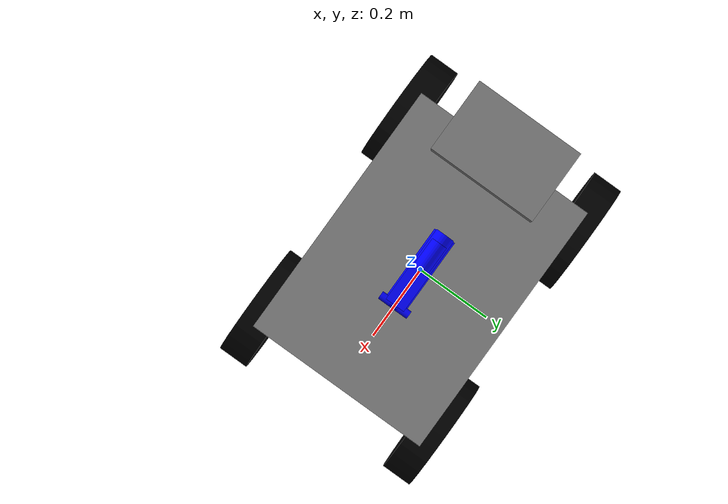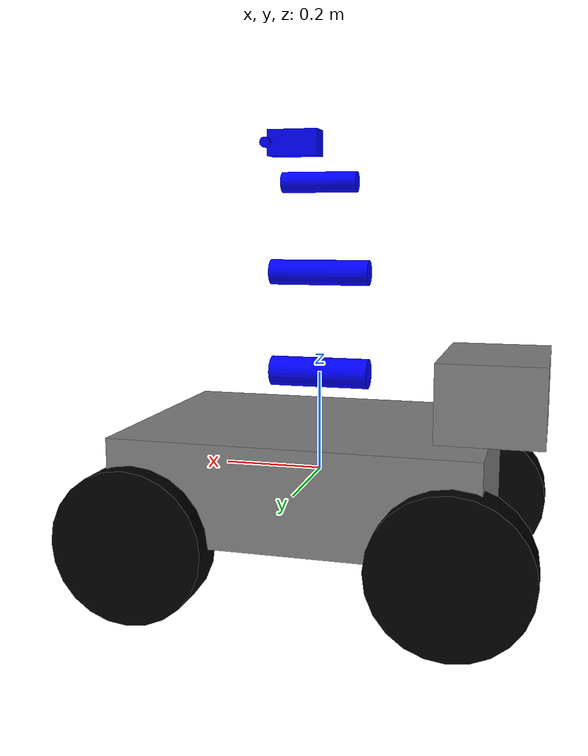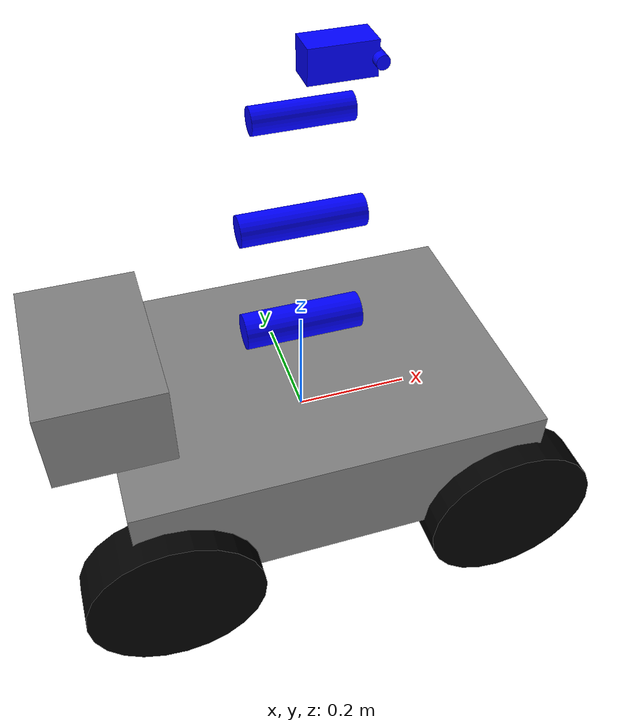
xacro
<?xml version="1.0"?>
<robot xmlns:xacro="http://ros.org/wiki/xacro" name="mobile_manipulator">

  <!-- Materials -->
  <material name="Grey"><color rgba="0.5 0.5 0.5 1"/></material>
  <material name="Black"><color rgba="0 0 0 1"/></material>
  <material name="Blue"><color rgba="0 0 1 1"/></material>

  <!-- Base Link -->
  <link name="base_link">
    <visual>
      <geometry><box size="0.7 0.5 0.2"/></geometry>
      <material name="Grey"/>
    </visual>
    <collision>
      <geometry><box size="0.7 0.5 0.2"/></geometry>
    </collision>
    <inertial>
      <mass value="6.0"/>
      <inertia ixx="0.1" ixy="0" ixz="0" iyy="0.1" iyz="0" izz="0.1"/>
    </inertial>
  </link>

  <!-- Back Electronics Box -->
  <link name="back_box">
    <visual>
      <geometry><box size="0.2 0.3 0.15"/></geometry>
      <origin xyz="-0.35 0 0.175" rpy="0 0 0"/>
      <material name="Grey"/>
    </visual>
    <collision>
      <geometry><box size="0.2 0.3 0.15"/></geometry>
      <origin xyz="-0.35 0 0.175" rpy="0 0 0"/>
    </collision>
    <inertial>
      <mass value="1.0"/>
      <inertia ixx="0.01" ixy="0" ixz="0" iyy="0.01" iyz="0" izz="0.01"/>
    </inertial>
  </link>

  <joint name="back_box_joint" type="fixed">
    <parent link="base_link"/>
    <child link="back_box"/>
    <origin xyz="0 0 0" rpy="0 0 0"/>
  </joint>

  <!-- Wheel Macro -->
  <xacro:macro name="wheel" params="name x y">
    <link name="${name}_wheel_link">
      <visual>
        <geometry><cylinder radius="0.15" length="0.08"/></geometry>
        <origin xyz="0 0 0" rpy="1.5708 0 0"/>
        <material name="Black"/>
      </visual>
      <collision>
        <geometry><cylinder radius="0.15" length="0.08"/></geometry>
        <origin xyz="0 0 0" rpy="1.5708 0 0"/>
      </collision>
      <inertial>
        <mass value="1.0"/>
        <inertia ixx="0.01" ixy="0" ixz="0" iyy="0.01" iyz="0" izz="0.01"/>
      </inertial>
    </link>
    <joint name="${name}_wheel_joint" type="continuous">
      <parent link="base_link"/>
      <child link="${name}_wheel_link"/>
      <origin xyz="${x} ${y} -0.1" rpy="0 0 0"/>
      <axis xyz="0 1 0"/>
    </joint>
  </xacro:macro>

  <!-- Instantiate Wheels -->
  <xacro:wheel name="front_left"  x="0.3" y=" 0.25"/>
  <xacro:wheel name="front_right" x="0.3" y="-0.25"/>
  <xacro:wheel name="rear_left"   x="-0.3" y=" 0.25"/>
  <xacro:wheel name="rear_right"  x="-0.3" y="-0.25"/>

  <!-- Arm Link 1 (Shoulder) -->
  <link name="arm_link_1">
    <visual>
      <geometry><cylinder length="0.2" radius="0.03"/></geometry>
      <origin xyz="0 0 0.1" rpy="0 1.5708 0"/>
      <material name="Blue"/>
    </visual>
    <collision>
      <geometry><cylinder length="0.2" radius="0.03"/></geometry>
      <origin xyz="0 0 0.1" rpy="0 1.5708 0"/>
    </collision>
    <inertial>
      <mass value="0.5"/>
      <inertia ixx="0.001" ixy="0" ixz="0" iyy="0.001" iyz="0" izz="0.001"/>
    </inertial>
  </link>
  <joint name="arm_base_joint" type="revolute">
    <parent link="base_link"/>
    <child link="arm_link_1"/>
    <origin xyz="0 0 0.1" rpy="0 0 0"/>
    <axis xyz="0 0 1"/>
    <limit lower="-1.57" upper="1.57" effort="1" velocity="1"/>
  </joint>

  <!-- Arm Link 2 (Elbow) -->
  <link name="arm_link_2">
    <visual>
      <geometry><cylinder length="0.2" radius="0.025"/></geometry>
      <origin xyz="0 0 0.1" rpy="0 1.5708 0"/>
      <material name="Blue"/>
    </visual>
    <collision>
      <geometry><cylinder length="0.2" radius="0.025"/></geometry>
      <origin xyz="0 0 0.1" rpy="0 1.5708 0"/>
    </collision>
    <inertial>
      <mass value="0.3"/>
      <inertia ixx="0.001" ixy="0" ixz="0" iyy="0.001" iyz="0" izz="0.001"/>
    </inertial>
  </link>
  <joint name="arm_elbow_joint" type="revolute">
    <parent link="arm_link_1"/>
    <child link="arm_link_2"/>
    <origin xyz="0 0 0.2" rpy="0 0 0"/>
    <axis xyz="0 1 0"/>
    <limit lower="-1.57" upper="1.57" effort="1" velocity="1"/>
  </joint>

  <!-- Arm Link 3 (Wrist) -->
  <link name="arm_link_3">
    <visual>
      <geometry><cylinder length="0.15" radius="0.02"/></geometry>
      <origin xyz="0 0 0.075" rpy="0 1.5708 0"/>
      <material name="Blue"/>
    </visual>
    <collision>
      <geometry><cylinder length="0.15" radius="0.02"/></geometry>
      <origin xyz="0 0 0.075" rpy="0 1.5708 0"/>
    </collision>
    <inertial>
      <mass value="0.2"/>
      <inertia ixx="0.0005" ixy="0" ixz="0" iyy="0.0005" iyz="0" izz="0.0005"/>
    </inertial>
  </link>
  <joint name="arm_wrist_joint" type="revolute">
    <parent link="arm_link_2"/>
    <child link="arm_link_3"/>
    <origin xyz="0 0 0.2" rpy="0 0 0"/>
    <axis xyz="0 1 0"/>
    <limit lower="-1.57" upper="1.57" effort="1" velocity="1"/>
  </joint>

  <!-- Simplified RG2 Gripper Box -->
  <link name="rg2_gripper">
    <visual>
      <geometry><box size="0.1 0.05 0.05"/></geometry>
      <origin xyz="0.05 0 0" rpy="0 0 0"/>
      <material name="Blue"/>
    </visual>
    <collision>
      <geometry><box size="0.1 0.05 0.05"/></geometry>
      <origin xyz="0.05 0 0" rpy="0 0 0"/>
    </collision>
    <inertial>
      <mass value="0.5"/>
      <inertia ixx="0.001" ixy="0" ixz="0" iyy="0.001" iyz="0" izz="0.001"/>
    </inertial>
  </link>
  <joint name="gripper_joint" type="fixed">
    <parent link="arm_link_3"/>
    <child link="rg2_gripper"/>
    <origin xyz="0 0 0.15" rpy="0 0 0"/>
  </joint>

  <!-- Gripper Fingers -->
  <link name="gripper_finger_left">
    <visual><geometry><cylinder radius="0.01" length="0.05"/></geometry>
           <origin xyz="0.1 0.015 0" rpy="1.5708 0 0"/><material name="Blue"/></visual>
  </link>
  <joint name="finger_left_joint" type="fixed">
    <parent link="rg2_gripper"/>
    <child link="gripper_finger_left"/>
    <origin xyz="0 0 0" rpy="0 0 0"/>
  </joint>

  <link name="gripper_finger_right">
    <visual><geometry><cylinder radius="0.01" length="0.05"/></geometry>
           <origin xyz="0.1 -0.015 0" rpy="1.5708 0 0"/><material name="Blue"/></visual>
  </link>
  <joint name="finger_right_joint" type="fixed">
    <parent link="rg2_gripper"/>
    <child link="gripper_finger_right"/>
    <origin xyz="0 0 0" rpy="0 0 0"/>
  </joint>

  <!-- Gazebo Diff Drive Plugin -->
  <gazebo>
    <plugin name="diff_drive_controller" filename="libgazebo_ros_diff_drive.so">
      <ros>
        <remapping>cmd_vel:=cmd_vel</remapping>
      </ros>
      <left_wheel>front_left_wheel_joint</left_wheel>
      <right_wheel>front_right_wheel_joint</right_wheel>
      <wheel_separation>0.5</wheel_separation>
      <wheel_diameter>0.3</wheel_diameter>
      <command_topic>cmd_vel</command_topic>
      <odometry_topic>odom</odometry_topic>
      <pose_covariance_diagonal>0.1 0.1 0.1 0.1 0.1 0.1</pose_covariance_diagonal>
    </plugin>
  </gazebo>

  <!-- Arm Controller Plugin (MoveIt) -->
  <controller name="arm_controller" type="position_controllers/JointTrajectoryController">
    <joint_names>
      <joint_name>arm_base_joint</joint_name>
      <joint_name>arm_elbow_joint</joint_name>
      <joint_name>arm_wrist_joint</joint_name>
    </joint_names>
  </controller>

</robot>
